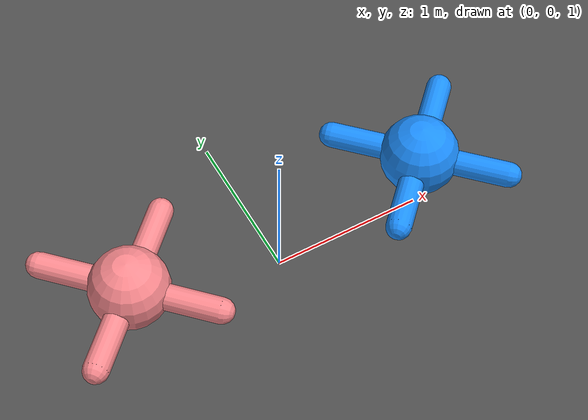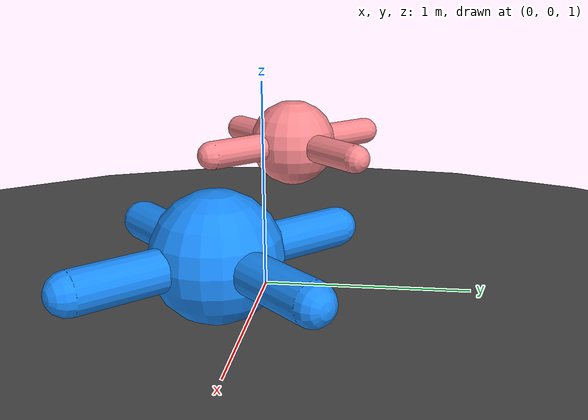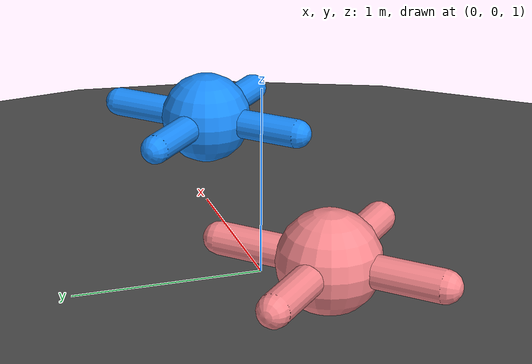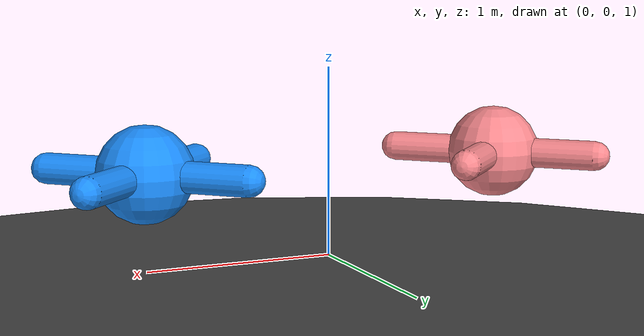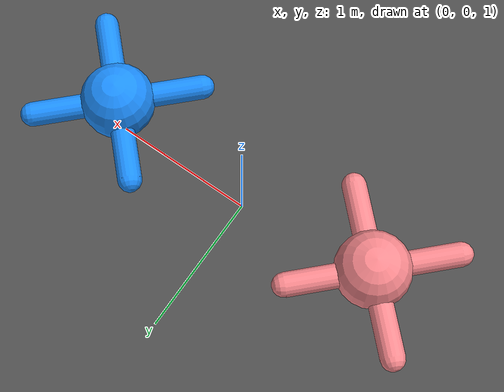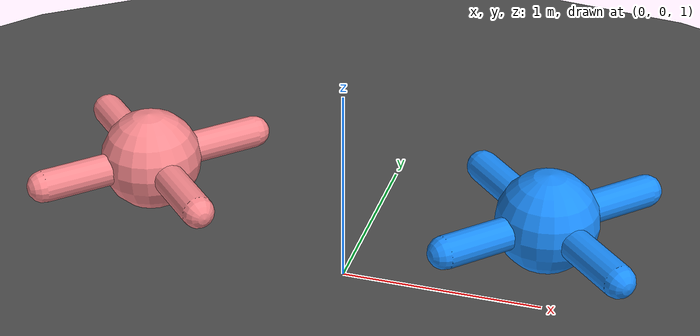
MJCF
<mujoco model="mutiagent_world">
  <compiler angle="degree" coordinate="local" inertiafromgeom="true" />
  <option integrator="RK4" timestep="0.003" solver="PGS" iterations="1000" />
  <default>
    <joint armature="1" damping="1" limited="true" />
  <default class="agent0"><joint armature="1" damping="1" limited="true" />
    <geom conaffinity="0" condim="3" density="5.0" friction="1 0.5 0.5" margin="0.01" rgba="0.98 0.54 0.56 1" material="geom" contype="1" />
  </default><default class="agent1"><joint armature="1" damping="1" limited="true" />
    <geom conaffinity="1" condim="3" density="5.0" friction="1 0.5 0.5" margin="0.01" rgba="0.11 0.56 1 1" material="geom" contype="0" />
  </default></default>
  <visual>
    <headlight ambient=".1 .1 .1" diffuse=".6 .6 .6" specular="0.3 0.3 0.3" />
    <map znear=".01" />
    <quality shadowsize="16384" />
  </visual>
  <asset>
    <texture builtin="gradient" height="100" rgb1="1 1 1" rgb2="0 0 0" type="skybox" width="100" />
    <texture builtin="flat" height="1278" mark="cross" markrgb="0 0 0" name="texgeom" random="0.01" rgb1="0.8 0.6 0.4" rgb2="0.8 0.6 0.4" type="cube" width="127" />
    <texture builtin="checker" height="100" name="texplane" rgb1="0.5 0.5 0.5" rgb2="0.5 0.5 0.5" type="2d" width="100" markrgb="0.2 0.2 0.2" mark="edge" />
    <texture name="MatPlane" type="2d" builtin="checker" rgb1=".5 .5 .5" rgb2=".5 .5 .5" width="300" height="300" mark="edge" markrgb="0.1 0.1 0.1" />
    <material name="MatPlane" texture="MatPlane" texrepeat="2 2" texuniform="true" reflectance=".2" />
    <material name="geom" texture="texgeom" texuniform="true" />
  </asset>
  <worldbody>
    <light cutoff="100" diffuse="1 1 1" dir="-0 0 -1.3" directional="true" exponent="1" pos="0 0 1.3" specular=".1 .1 .1" />
    <geom contype="1" conaffinity="1" friction="1 .1 .1" condim="3" material="MatPlane" name="floor" pos="0 0 0" rgba="1 1 1 1" size="20 20 0.125" type="plane" />
    <geom fromto="4 -5 0  4 +5 0" name="rightgoal" rgba="0.6 0.0 0.0 0" size=".03" type="cylinder" />
    <geom fromto="-4 -5 0  -4 +5 0" name="leftgoal" rgba="0.6 0.0 0.0 0" size=".03" type="cylinder" />
    <geom conaffinity="1" condim="3" contype="1" friction="1 .1 .1" name="arena" size="4.5 .25" type="cylinder" pos="0 0 0.25" rgba="0.3 0.3 0.3 1" />
  <body name="agent0/0" pos="-1 0 1.5" euler="0 0 0">
      <geom pos="0 0 0" size="0.25" type="sphere" class="agent0" name="agent0/anon3578544904" />
      <joint armature="0" damping="0" limited="false" margin="0.01" name="agent0/root" pos="0 0 0" range="-30 30" type="free" />
      <body name="agent0/1" pos="0 0 0">
          <geom fromto="0.0 0.0 0.0 0.4 0.4 0.0" size="0.08" type="capsule" class="agent0" name="agent0/anon9334530083" />
          <joint axis="-1 1 0" name="agent0/1_joint" pos="0.0 0.0 0.0" range="-30 30" type="hinge" />
      </body>
      <body name="agent0/2" pos="0 0 0">
          <geom fromto="0.0 0.0 0.0 -0.4 0.4 0.0" size="0.08" type="capsule" class="agent0" name="agent0/anon5974559825" />
          <joint axis="-1 -1 0" name="agent0/2_joint" pos="0.0 0.0 0.0" range="-30 30" type="hinge" />
      </body>
      <body name="agent0/3" pos="0 0 0">
          <geom fromto="0.0 0.0 0.0 -0.4 -0.4 0.0" size="0.08" type="capsule" class="agent0" name="agent0/anon6120997886" />
          <joint axis="1 -1 0" name="agent0/3_joint" pos="0.0 0.0 0.0" range="-30 30" type="hinge" />
      </body>
      <body name="agent0/4" pos="0 0 0">
          <geom fromto="0.0 0.0 0.0 0.4 -0.4 0.0" size="0.08" type="capsule" class="agent0" name="agent0/anon5188069942" />
          <joint axis="1 1 0" name="agent0/4_joint" pos="0.0 0.0 0.0" range="-30 30" type="hinge" />
      </body>
    </body>

  <body name="agent1/0" pos="1 0 1.5" euler="0 0 180">
      <geom pos="0 0 0" size="0.25" type="sphere" class="agent1" name="agent1/anon6733221636" />
      <joint armature="0" damping="0" limited="false" margin="0.01" name="agent1/root" pos="0 0 0" range="-30 30" type="free" />
      <body name="agent1/1" pos="0 0 0">
          <geom fromto="0.0 0.0 0.0 0.4 0.4 0.0" size="0.08" type="capsule" class="agent1" name="agent1/anon4429456861" />
          <joint axis="-1 1 0" name="agent1/1_joint" pos="0.0 0.0 0.0" range="-30 30" type="hinge" />
      </body>
      <body name="agent1/2" pos="0 0 0">
          <geom fromto="0.0 0.0 0.0 -0.4 0.4 0.0" size="0.08" type="capsule" class="agent1" name="agent1/anon6226646572" />
          <joint axis="-1 -1 0" name="agent1/2_joint" pos="0.0 0.0 0.0" range="-30 30" type="hinge" />
      </body>
      <body name="agent1/3" pos="0 0 0">
          <geom fromto="0.0 0.0 0.0 -0.4 -0.4 0.0" size="0.08" type="capsule" class="agent1" name="agent1/anon5992124618" />
          <joint axis="1 -1 0" name="agent1/3_joint" pos="0.0 0.0 0.0" range="-30 30" type="hinge" />
      </body>
      <body name="agent1/4" pos="0 0 0">
          <geom fromto="0.0 0.0 0.0 0.4 -0.4 0.0" size="0.08" type="capsule" class="agent1" name="agent1/anon8274936804" />
          <joint axis="1 1 0" name="agent1/4_joint" pos="0.0 0.0 0.0" range="-30 30" type="hinge" />
      </body>
    </body>

  </worldbody>
<actuator>
    <motor ctrllimited="true" ctrlrange="-1.0 1.0" joint="agent0/1_joint" gear="150" name="agent0/1_joint" class="agent0" />
    <motor ctrllimited="true" ctrlrange="-1.0 1.0" joint="agent0/2_joint" gear="150" name="agent0/2_joint" class="agent0" />
    <motor ctrllimited="true" ctrlrange="-1.0 1.0" joint="agent0/3_joint" gear="150" name="agent0/3_joint" class="agent0" />
    <motor ctrllimited="true" ctrlrange="-1.0 1.0" joint="agent0/4_joint" gear="150" name="agent0/4_joint" class="agent0" />
  <motor ctrllimited="true" ctrlrange="-1.0 1.0" joint="agent1/1_joint" gear="150" name="agent1/1_joint" class="agent1" />
    <motor ctrllimited="true" ctrlrange="-1.0 1.0" joint="agent1/2_joint" gear="150" name="agent1/2_joint" class="agent1" />
    <motor ctrllimited="true" ctrlrange="-1.0 1.0" joint="agent1/3_joint" gear="150" name="agent1/3_joint" class="agent1" />
    <motor ctrllimited="true" ctrlrange="-1.0 1.0" joint="agent1/4_joint" gear="150" name="agent1/4_joint" class="agent1" />
  </actuator>
  </mujoco>
